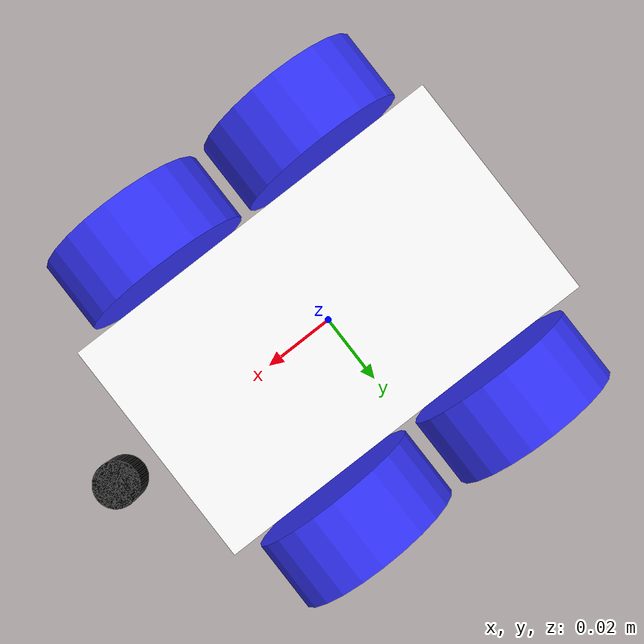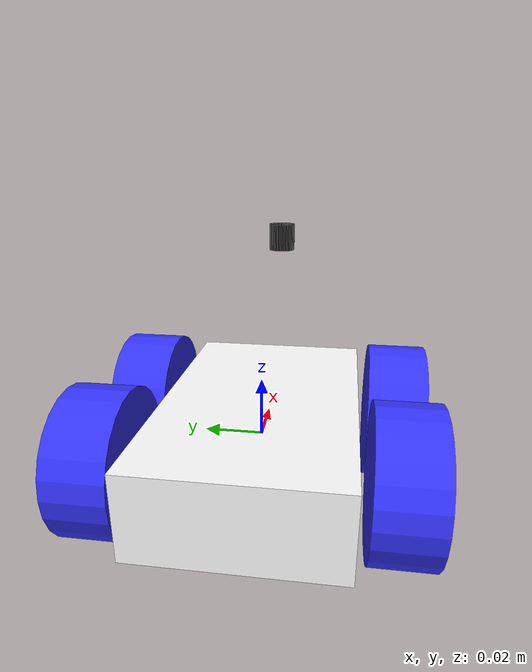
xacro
<?xml version="1.0"?>
<robot xmlns:xacro="http://www.ros.org/wiki/xacro"  name="robot">

    <xacro:include filename="inertial_macros.xacro"/>

    <material name="white">
        <color rgba="1 1 1 1" />
    </material>

    <material name="orange">
        <color rgba="1 0.3 0.1 1" />
    </material>

    <material name="blue">
        <color rgba="0.2 0.2 1 1" />
    </material>

    <material name="black">
        <color rgba="0 0 0 1" />
    </material>

    <material name="red">
        <color rgba="1 0 0 1" />
    </material>

    <!-- Example link -->
    <link name="base_link">
    </link>

    <!-- CHASSIS LINK-->
    <joint name="chassis_joint" type="fixed">
        <parent link= "base_link"/>
        <child link="chassis"/>
        <origin xyz="0 0 0"/>
    </joint>

    <link name="chassis">
        <visual>
            <origin xyz="0 0 0"/>
            <geometry>
                <box size="0.111 0.065 0.028"/>
            </geometry>
            <material name="white"/>
        </visual>
        <collision>
            <geometry>
                <box size="0.111 0.065 0.028"/>
            </geometry>
        </collision>
        <xacro:inertial_box mass="0.5" x="0.111" y="0.065" z="0.028">
            <origin xyz="0 0 0" rpy="0 0 0"/>
        </xacro:inertial_box>
    </link>

    <gazebo reference="chassis">
        <material>Gazebo/White</material>
    </gazebo>

    <!--FORWARD_LEFT LINK-->
    <joint name="front_left_wheel_joint" type="continuous">
        <parent link="base_link"/>
        <child link="front_left_wheel"/>
        <origin xyz="0.0265 0.046 0" rpy="-${pi/2} 0 0"/>
        <axis xyz="0 0 1"/>
        <dynamics damping="0.1" friction="0.1"/>
    </joint>

    <link name="front_left_wheel">
        <visual>
            <geometry>
                <cylinder radius="0.0245" length="0.02"/>
            </geometry>
            <material name="blue"/>
        </visual>
        <collision>
            <geometry>
                <cylinder radius="0.0245" length="0.02"/>
            </geometry>
        </collision>
        <xacro:inertial_cylinder mass="0.1" length="0.02" radius="0.0245">
            <origin xyz="0 0 0" rpy="0 0 0"/>
        </xacro:inertial_cylinder>
    </link>

    <gazebo reference="front_left_wheel">
        <material>Gazebo/Blue</material>
        <surface>
        <friction>
          <ode>
            <mu>10.0</mu>
            <mu2>10.0</mu2>
          </ode>
        </friction>
</surface>
    </gazebo>

    <!--FORWARD_RIGHT LINK-->
    <joint name="front_right_wheel_joint" type="continuous">
        <parent link="base_link"/>
        <child link="front_rear_wheel"/>
        <origin xyz="0.026 -0.046 0" rpy="-${pi/2} 0 0"/>
        <axis xyz="0 0 1"/>
        <dynamics damping="0.1" friction="0.1"/>
    </joint>

    <link name="front_rear_wheel">
        <visual>
            <geometry>
                <cylinder radius="0.0245" length="0.02"/>
            </geometry>
            <material name="blue"/>
        </visual>
        <collision>
            <geometry>
                <cylinder radius="0.0245" length="0.02"/>
            </geometry>
        </collision>
        <xacro:inertial_cylinder mass="0.1" length="0.02" radius="0.0245">
            <origin xyz="0 0 0" rpy="0 0 0"/>
        </xacro:inertial_cylinder>
    </link>
    <gazebo reference="front_rear_wheel">
        <material>Gazebo/Blue</material>
        <friction>
          <ode>
            <mu>10.0</mu>
            <mu2>10.0</mu2>
          </ode>
        </friction>
    </gazebo>

    <!--BACK_LEFT LINK-->
    <joint name="back_left_wheel_joint" type="continuous">
        <parent link="base_link"/>
        <child link="back_left_wheel"/>
        <origin xyz="-0.026 0.046 0" rpy="-${pi/2} 0 0"/>
        <axis xyz="0 0 1"/>
        <dynamics damping="0.1" friction="0.1"/>
    </joint>

    <link name="back_left_wheel">
        <visual>
            <geometry>
                <cylinder radius="0.0245" length="0.02"/>
            </geometry>
            <material name="blue"/>
        </visual>
        <collision>
            <geometry>
                <cylinder radius="0.0245" length="0.02"/>
            </geometry>
        </collision>
        <xacro:inertial_cylinder mass="0.1" length="0.02" radius="0.0245">
            <origin xyz="0 0 0" rpy="0 0 0"/>
        </xacro:inertial_cylinder>
    </link>
    <gazebo reference="back_left_wheel">
        <friction>
          <ode>
            <mu>10.0</mu>
            <mu2>10.0</mu2>
          </ode>
        </friction>
    </gazebo>

    <!--BACK_RIGHT LINK-->
    <joint name="back_right_wheel_joint" type="continuous">
        <parent link="base_link"/>
        <child link="back_right_wheel"/>
        <origin xyz="-0.026 -0.046 0" rpy="-${pi/2} 0 0"/>
        <axis xyz="0 0 1"/>
        <dynamics damping="0.1" friction="0.1"/>
    </joint>

    <link name="back_right_wheel">
        <visual>
            <geometry>
                <cylinder radius="0.0245" length="0.02"/>
            </geometry>
            <material name="blue"/>
        </visual>
        <collision>
            <geometry>
                <cylinder radius="0.0245" length="0.02"/>
            </geometry>
        </collision>
        <xacro:inertial_cylinder mass="0.1" length="0.02" radius="0.0245">
            <origin xyz="0 0 0" rpy="0 0 0"/>
        </xacro:inertial_cylinder>
    </link>

    <gazebo reference="back_left_wheel">
        <friction>
          <ode>
            <mu>10.0</mu>
            <mu2>10.0</mu2>
          </ode>
        </friction>
    </gazebo>

   <!-- ToF Sensor - Forward -->
<link name="tof_sensor_front_link">
  <visual>
    <origin xyz="0 0 0.03" rpy="0 0 0"/>
    <geometry><cylinder radius="0.005" length="0.01"/></geometry>
    <material name="black"/>
  </visual>
  <collision>
    <origin xyz="0 0 0.03" rpy="0 0 0"/>
    <geometry><cylinder radius="0.005" length="0.01"/></geometry>
  </collision>
  <inertial>
    <mass value="0.01"/>
    <origin xyz="0 0 0.03" rpy="0 0 0"/>
    <inertia ixx="1e-6" ixy="0" ixz="0" iyy="1e-6" iyz="0" izz="1e-6"/>
  </inertial>
</link>

<joint name="tof_sensor_front_joint" type="fixed">
  <parent link="base_link"/>
  <child link="tof_sensor_front_link"/>
  <origin xyz="0.055 0 0.03" rpy="0 0 0"/>
</joint>

<gazebo reference="tof_sensor_front_link">
  <sensor name="tof_front" type="ray">
    <pose>0.03 0 0 0 0 0</pose>
    <visualize>true</visualize>
    <update_rate>10</update_rate>
    <ray>
      <scan>
        <horizontal>
          <samples>1</samples>
          <resolution>1</resolution>
          <min_angle>0</min_angle>
          <max_angle>0</max_angle>
        </horizontal>
      </scan>
      <range>
        <min>0.01</min>
        <max>2.0</max>
        <resolution>0.01</resolution>
      </range>
    </ray>
    <plugin name="gazebo_ros_ray_sensor" filename="libgazebo_ros_ray_sensor.so">
      <ros><argument>~/out:=tof_front</argument></ros>
      <output_type>sensor_msgs/LaserScan</output_type>
      <frame_name>tof_sensor_front_link</frame_name>
    </plugin>
  </sensor>
</gazebo>

<!-- ToF Sensor - Left 45° -->
<link name="tof_sensor_left_link">
  <visual>
    <origin xyz="0 0 0.03" rpy="0 0 0"/>
    <geometry><cylinder radius="0.005" length="0.01"/></geometry>
    <material name="black"/>
  </visual>
  <collision>
    <origin xyz="0 0 0.03" rpy="0 0 0"/>
    <geometry><cylinder radius="0.005" length="0.01"/></geometry>
  </collision>
  <inertial>
    <mass value="0.01"/>
    <origin xyz="0 0 0.03" rpy="0 0 0"/>
    <inertia ixx="1e-6" ixy="0" ixz="0" iyy="1e-6" iyz="0" izz="1e-6"/>
  </inertial>
</link>

<joint name="tof_sensor_left_joint" type="fixed">
  <parent link="base_link"/>
  <child link="tof_sensor_left_link"/>
  <origin xyz="0.055 0 0.03" rpy="0 0 0.4636"/> <!-- 0.7854 rad ≈ 45° -->
</joint>

<gazebo reference="tof_sensor_left_link">
  <sensor name="tof_left" type="ray">
    <pose>0.03 0 0 0 0 0</pose>
    <visualize>true</visualize>
    <update_rate>10</update_rate>
    <ray>
      <scan>
        <horizontal>
          <samples>1</samples>
          <resolution>1</resolution>
          <min_angle>0</min_angle>
          <max_angle>0</max_angle>
        </horizontal>
      </scan>
      <range>
        <min>0.01</min>
        <max>2.0</max>
        <resolution>0.01</resolution>
      </range>
    </ray>
    <plugin name="gazebo_ros_ray_sensor_left" filename="libgazebo_ros_ray_sensor.so">
      <ros><argument>~/out:=tof_left</argument></ros>
      <output_type>sensor_msgs/LaserScan</output_type>
      <frame_name>tof_sensor_left_link</frame_name>
    </plugin>
  </sensor>
</gazebo>

<!-- ToF Sensor - Right 45° -->
<link name="tof_sensor_right_link">
  <visual>
    <origin xyz="0 0 0.03" rpy="0 0 0"/>
    <geometry><cylinder radius="0.005" length="0.01"/></geometry>
    <material name="black"/>
  </visual>
  <collision>
    <origin xyz="0 0 0.03" rpy="0 0 0"/>
    <geometry><cylinder radius="0.005" length="0.01"/></geometry>
  </collision>
  <inertial>
    <mass value="0.01"/>
    <origin xyz="0 0 0.03" rpy="0 0 0"/>
    <inertia ixx="1e-6" ixy="0" ixz="0" iyy="1e-6" iyz="0" izz="1e-6"/>
  </inertial>
</link>

<joint name="tof_sensor_right_joint" type="fixed">
  <parent link="base_link"/>
  <child link="tof_sensor_right_link"/>
  <origin xyz="0.055 0 0.03" rpy="0 0 -0.4636"/> <!-- -0.7854 rad ≈ -45° -->
</joint>

<gazebo reference="tof_sensor_right_link">
  <sensor name="tof_right" type="ray">
    <pose>0.03 0 0 0 0 0</pose>
    <visualize>true</visualize>
    <update_rate>10</update_rate>
    <ray>
      <scan>
        <horizontal>
          <samples>1</samples>
          <resolution>1</resolution>
          <min_angle>0</min_angle>
          <max_angle>0</max_angle>
        </horizontal>
      </scan>
      <range>
        <min>0.01</min>
        <max>2.0</max>
        <resolution>0.01</resolution>
      </range>
    </ray>
    <plugin name="gazebo_ros_ray_sensor_right" filename="libgazebo_ros_ray_sensor.so">
      <ros><argument>~/out:=tof_right</argument></ros>
      <output_type>sensor_msgs/LaserScan</output_type>
      <frame_name>tof_sensor_right_link</frame_name>
    </plugin>
  </sensor>
</gazebo>

    <gazebo>
        <plugin name='skid_steer_drive' filename='libgazebo_ros_diff_drive.so'>
        <ros>
          <!-- Set namespace -->
          <namespace></namespace>

        </ros>

        <!-- Update rate -->
        <update_rate>500</update_rate>

        <!-- Number of wheel pairs -->
        <num_wheel_pairs>2</num_wheel_pairs>

        <cmd_vel_timeout>0.1</cmd_vel_timeout>

        <!-- wheels0 -->
        <left_joint>front_left_wheel_joint</left_joint>
        <right_joint>front_right_wheel_joint</right_joint>

        <!-- wheels1-->
        <left_joint>back_left_wheel_joint</left_joint>
        <right_joint>back_right_wheel_joint</right_joint>

        <!-- kinematics -->
        <wheel_separation>0.053</wheel_separation>
        <wheel_separation>0.53</wheel_separation>

        <wheel_diameter>0.049</wheel_diameter>
        <wheel_diameter>0.049</wheel_diameter>

        <!-- limits -->
        <max_wheel_torque>20</max_wheel_torque>
        <max_wheel_acceleration>1.0</max_wheel_acceleration>

        <!-- output -->
        <publish_odom>true</publish_odom>
        <publish_odom_tf>true</publish_odom_tf>
        <publish_wheel_tf>true</publish_wheel_tf>

        <odometry_frame>odom</odometry_frame>
        <robot_base_frame>base_link</robot_base_frame>

      </plugin>
    </gazebo>

</robot>
